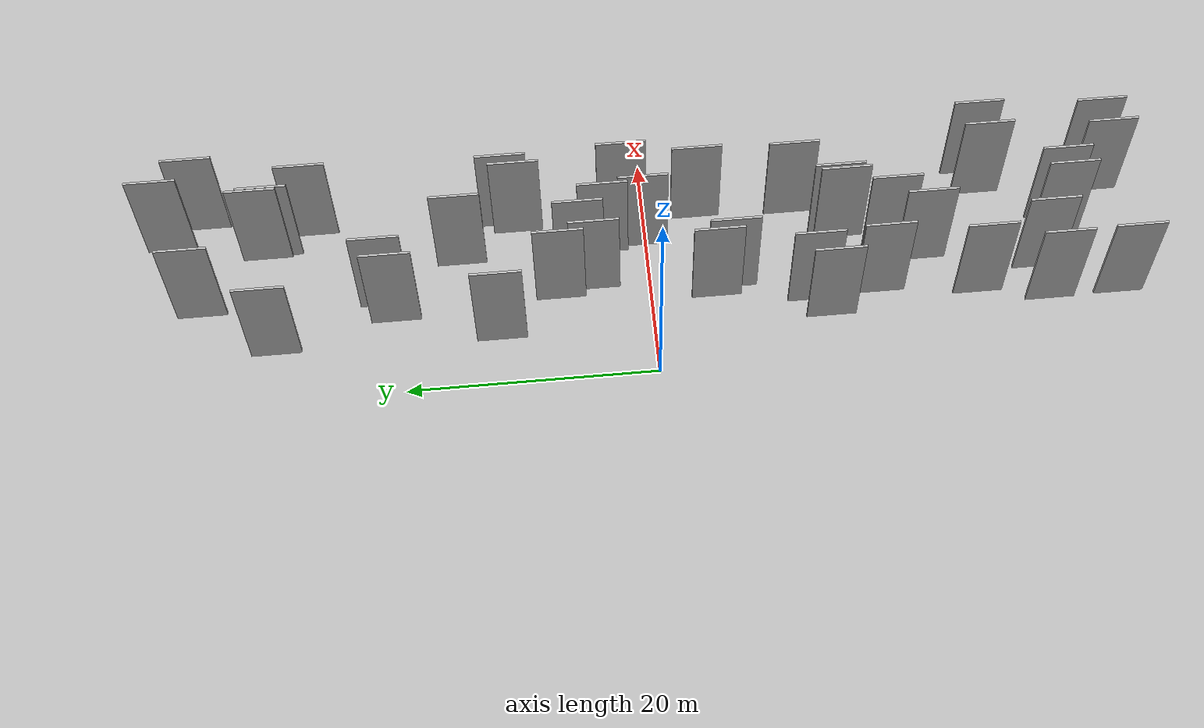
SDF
<?xml version="1.0" encoding="utf-8"?>

<sdf version="1.6">

   <world name="default">

      <gui fullscreen="0">

         <camera name="user_camera">

            <pose>-15 0 4.57585 0 0 0</pose>

            <view_controller>orbit</view_controller>

         </camera>

      </gui>

      <scene>

         <sky>

           <clouds>

             <speed>12</speed>

           </clouds>

         </sky>

         <ambient>0.4 0.4 0.4 1</ambient>

         <background>0.7 0.7 0.7 1</background>

         <shadows>1</shadows>

      </scene>

      <gravity>0 0 -9.8066</gravity>

      <magnetic_field>6e-06 2.3e-05 -4.2e-05</magnetic_field>

      <physics default="0" name="default_physics" type="ode">

         <ode>

            <solver>

               <type>quick</type>

               <iters>10</iters>

               <sor>1.0</sor>

               <use_dynamic_moi_rescaling>0</use_dynamic_moi_rescaling>

            </solver>

            <constraints>

               <cfm>0</cfm>

               <erp>0.2</erp>

               <contact_max_correcting_vel>100</contact_max_correcting_vel>

               <contact_surface_layer>0.001</contact_surface_layer>

            </constraints>

         </ode>

         <max_step_size>0.004</max_step_size>

         <real_time_factor>1</real_time_factor>

         <real_time_update_rate>250</real_time_update_rate>

      </physics>

      <light name="sun" type="directional">

         <cast_shadows>1</cast_shadows>

         <pose>0 0 10 0 0 0</pose>

         <diffuse>0.8 0.8 0.8 1</diffuse>

         <specular>0.2 0.2 0.2 1</specular>

         <attenuation>

            <range>1000</range>

            <constant>0.9</constant>

            <linear>0.01</linear>

            <quadratic>0.001</quadratic>

         </attenuation>

         <direction>-0.5 0.1 -0.9</direction>

      </light>

      <include>

         <name>ground_plane_1</name>

         <uri>model://HANNAS_ground_plane</uri>

         <pose>0 0 0  0 0 0</pose>

      </include>

      <include>

         <name>ground_plane_2</name>

         <uri>model://HANNAS_ground_plane</uri>

         <pose>100 0 0  0 0 0</pose>

      </include>

      <model name="HANNAS_wall_1">

         <static>1</static>

         <pose frame="">16.8751 36.0884 0.0 0.000000 0.000000 1.570796</pose>

         <link name="link">

            <pose frame="">0 0 5.00 0 0 0</pose>

            <collision name="collision">

               <geometry>

                  <box>

                     <size>4.00 0.2 10.00</size>

                  </box>

               </geometry>

               <max_contacts>10</max_contacts>

               <surface>

                  <contact>

                     <ode/>

                  </contact>

                  <bounce/>

                  <friction>

                     <torsional>

                        <ode/>

                     </torsional>

                     <ode/>

                  </friction>

               </surface>

            </collision>

            <visual name="visual">

               <cast_shadows>0</cast_shadows>

               <geometry>

                  <box>

                     <size>4.00 0.2 10.00</size>

                  </box>

               </geometry>

               <material>

                  <script>

                     <uri>model://HANNAS_wall/materials/scripts</uri>

                     <uri>model://HANNAS_wall/materials/textures</uri>

                     <name>vrc/HANNAS_wall</name>

                  </script>

               </material>

            </visual>

            <self_collide>0</self_collide>

            <enable_wind>0</enable_wind>

            <kinematic>0</kinematic>

         </link>

      </model>

      <model name="HANNAS_wall_2">

         <static>1</static>

         <pose frame="">11.9350 0.3305 0.0 0.000000 0.000000 1.570796</pose>

         <link name="link">

            <pose frame="">0 0 5.00 0 0 0</pose>

            <collision name="collision">

               <geometry>

                  <box>

                     <size>4.00 0.2 10.00</size>

                  </box>

               </geometry>

               <max_contacts>10</max_contacts>

               <surface>

                  <contact>

                     <ode/>

                  </contact>

                  <bounce/>

                  <friction>

                     <torsional>

                        <ode/>

                     </torsional>

                     <ode/>

                  </friction>

               </surface>

            </collision>

            <visual name="visual">

               <cast_shadows>0</cast_shadows>

               <geometry>

                  <box>

                     <size>4.00 0.2 10.00</size>

                  </box>

               </geometry>

               <material>

                  <script>

                     <uri>model://HANNAS_wall/materials/scripts</uri>

                     <uri>model://HANNAS_wall/materials/textures</uri>

                     <name>vrc/HANNAS_wall</name>

                  </script>

               </material>

            </visual>

            <self_collide>0</self_collide>

            <enable_wind>0</enable_wind>

            <kinematic>0</kinematic>

         </link>

      </model>

      <model name="HANNAS_wall_3">

         <static>1</static>

         <pose frame="">8.0137 21.4762 0.0 0.000000 0.000000 1.570796</pose>

         <link name="link">

            <pose frame="">0 0 5.00 0 0 0</pose>

            <collision name="collision">

               <geometry>

                  <box>

                     <size>4.00 0.2 10.00</size>

                  </box>

               </geometry>

               <max_contacts>10</max_contacts>

               <surface>

                  <contact>

                     <ode/>

                  </contact>

                  <bounce/>

                  <friction>

                     <torsional>

                        <ode/>

                     </torsional>

                     <ode/>

                  </friction>

               </surface>

            </collision>

            <visual name="visual">

               <cast_shadows>0</cast_shadows>

               <geometry>

                  <box>

                     <size>4.00 0.2 10.00</size>

                  </box>

               </geometry>

               <material>

                  <script>

                     <uri>model://HANNAS_wall/materials/scripts</uri>

                     <uri>model://HANNAS_wall/materials/textures</uri>

                     <name>vrc/HANNAS_wall</name>

                  </script>

               </material>

            </visual>

            <self_collide>0</self_collide>

            <enable_wind>0</enable_wind>

            <kinematic>0</kinematic>

         </link>

      </model>

      <model name="HANNAS_wall_4">

         <static>1</static>

         <pose frame="">13.9811 -37.6866 0.0 0.000000 0.000000 1.570796</pose>

         <link name="link">

            <pose frame="">0 0 5.00 0 0 0</pose>

            <collision name="collision">

               <geometry>

                  <box>

                     <size>4.00 0.2 10.00</size>

                  </box>

               </geometry>

               <max_contacts>10</max_contacts>

               <surface>

                  <contact>

                     <ode/>

                  </contact>

                  <bounce/>

                  <friction>

                     <torsional>

                        <ode/>

                     </torsional>

                     <ode/>

                  </friction>

               </surface>

            </collision>

            <visual name="visual">

               <cast_shadows>0</cast_shadows>

               <geometry>

                  <box>

                     <size>4.00 0.2 10.00</size>

                  </box>

               </geometry>

               <material>

                  <script>

                     <uri>model://HANNAS_wall/materials/scripts</uri>

                     <uri>model://HANNAS_wall/materials/textures</uri>

                     <name>vrc/HANNAS_wall</name>

                  </script>

               </material>

            </visual>

            <self_collide>0</self_collide>

            <enable_wind>0</enable_wind>

            <kinematic>0</kinematic>

         </link>

      </model>

      <model name="HANNAS_wall_5">

         <static>1</static>

         <pose frame="">3.7342 -14.1265 0.0 0.000000 0.000000 1.570796</pose>

         <link name="link">

            <pose frame="">0 0 5.00 0 0 0</pose>

            <collision name="collision">

               <geometry>

                  <box>

                     <size>4.00 0.2 10.00</size>

                  </box>

               </geometry>

               <max_contacts>10</max_contacts>

               <surface>

                  <contact>

                     <ode/>

                  </contact>

                  <bounce/>

                  <friction>

                     <torsional>

                        <ode/>

                     </torsional>

                     <ode/>

                  </friction>

               </surface>

            </collision>

            <visual name="visual">

               <cast_shadows>0</cast_shadows>

               <geometry>

                  <box>

                     <size>4.00 0.2 10.00</size>

                  </box>

               </geometry>

               <material>

                  <script>

                     <uri>model://HANNAS_wall/materials/scripts</uri>

                     <uri>model://HANNAS_wall/materials/textures</uri>

                     <name>vrc/HANNAS_wall</name>

                  </script>

               </material>

            </visual>

            <self_collide>0</self_collide>

            <enable_wind>0</enable_wind>

            <kinematic>0</kinematic>

         </link>

      </model>

      <model name="HANNAS_wall_6">

         <static>1</static>

         <pose frame="">14.1956 10.4184 0.0 0.000000 0.000000 1.570796</pose>

         <link name="link">

            <pose frame="">0 0 5.00 0 0 0</pose>

            <collision name="collision">

               <geometry>

                  <box>

                     <size>4.00 0.2 10.00</size>

                  </box>

               </geometry>

               <max_contacts>10</max_contacts>

               <surface>

                  <contact>

                     <ode/>

                  </contact>

                  <bounce/>

                  <friction>

                     <torsional>

                        <ode/>

                     </torsional>

                     <ode/>

                  </friction>

               </surface>

            </collision>

            <visual name="visual">

               <cast_shadows>0</cast_shadows>

               <geometry>

                  <box>

                     <size>4.00 0.2 10.00</size>

                  </box>

               </geometry>

               <material>

                  <script>

                     <uri>model://HANNAS_wall/materials/scripts</uri>

                     <uri>model://HANNAS_wall/materials/textures</uri>

                     <name>vrc/HANNAS_wall</name>

                  </script>

               </material>

            </visual>

            <self_collide>0</self_collide>

            <enable_wind>0</enable_wind>

            <kinematic>0</kinematic>

         </link>

      </model>

      <model name="HANNAS_wall_7">

         <static>1</static>

         <pose frame="">16.7592 -27.3400 0.0 0.000000 0.000000 1.570796</pose>

         <link name="link">

            <pose frame="">0 0 5.00 0 0 0</pose>

            <collision name="collision">

               <geometry>

                  <box>

                     <size>4.00 0.2 10.00</size>

                  </box>

               </geometry>

               <max_contacts>10</max_contacts>

               <surface>

                  <contact>

                     <ode/>

                  </contact>

                  <bounce/>

                  <friction>

                     <torsional>

                        <ode/>

                     </torsional>

                     <ode/>

                  </friction>

               </surface>

            </collision>

            <visual name="visual">

               <cast_shadows>0</cast_shadows>

               <geometry>

                  <box>

                     <size>4.00 0.2 10.00</size>

                  </box>

               </geometry>

               <material>

                  <script>

                     <uri>model://HANNAS_wall/materials/scripts</uri>

                     <uri>model://HANNAS_wall/materials/textures</uri>

                     <name>vrc/HANNAS_wall</name>

                  </script>

               </material>

            </visual>

            <self_collide>0</self_collide>

            <enable_wind>0</enable_wind>

            <kinematic>0</kinematic>

         </link>

      </model>

      <model name="HANNAS_wall_8">

         <static>1</static>

         <pose frame="">11.6335 -15.3026 0.0 0.000000 0.000000 1.570796</pose>

         <link name="link">

            <pose frame="">0 0 5.00 0 0 0</pose>

            <collision name="collision">

               <geometry>

                  <box>

                     <size>4.00 0.2 10.00</size>

                  </box>

               </geometry>

               <max_contacts>10</max_contacts>

               <surface>

                  <contact>

                     <ode/>

                  </contact>

                  <bounce/>

                  <friction>

                     <torsional>

                        <ode/>

                     </torsional>

                     <ode/>

                  </friction>

               </surface>

            </collision>

            <visual name="visual">

               <cast_shadows>0</cast_shadows>

               <geometry>

                  <box>

                     <size>4.00 0.2 10.00</size>

                  </box>

               </geometry>

               <material>

                  <script>

                     <uri>model://HANNAS_wall/materials/scripts</uri>

                     <uri>model://HANNAS_wall/materials/textures</uri>

                     <name>vrc/HANNAS_wall</name>

                  </script>

               </material>

            </visual>

            <self_collide>0</self_collide>

            <enable_wind>0</enable_wind>

            <kinematic>0</kinematic>

         </link>

      </model>

      <model name="HANNAS_wall_9">

         <static>1</static>

         <pose frame="">4.1911 30.1464 0.0 0.000000 0.000000 1.570796</pose>

         <link name="link">

            <pose frame="">0 0 5.00 0 0 0</pose>

            <collision name="collision">

               <geometry>

                  <box>

                     <size>4.00 0.2 10.00</size>

                  </box>

               </geometry>

               <max_contacts>10</max_contacts>

               <surface>

                  <contact>

                     <ode/>

                  </contact>

                  <bounce/>

                  <friction>

                     <torsional>

                        <ode/>

                     </torsional>

                     <ode/>

                  </friction>

               </surface>

            </collision>

            <visual name="visual">

               <cast_shadows>0</cast_shadows>

               <geometry>

                  <box>

                     <size>4.00 0.2 10.00</size>

                  </box>

               </geometry>

               <material>

                  <script>

                     <uri>model://HANNAS_wall/materials/scripts</uri>

                     <uri>model://HANNAS_wall/materials/textures</uri>

                     <name>vrc/HANNAS_wall</name>

                  </script>

               </material>

            </visual>

            <self_collide>0</self_collide>

            <enable_wind>0</enable_wind>

            <kinematic>0</kinematic>

         </link>

      </model>

      <model name="HANNAS_wall_10">

         <static>1</static>

         <pose frame="">11.2698 -15.7501 0.0 0.000000 0.000000 1.570796</pose>

         <link name="link">

            <pose frame="">0 0 5.00 0 0 0</pose>

            <collision name="collision">

               <geometry>

                  <box>

                     <size>4.00 0.2 10.00</size>

                  </box>

               </geometry>

               <max_contacts>10</max_contacts>

               <surface>

                  <contact>

                     <ode/>

                  </contact>

                  <bounce/>

                  <friction>

                     <torsional>

                        <ode/>

                     </torsional>

                     <ode/>

                  </friction>

               </surface>

            </collision>

            <visual name="visual">

               <cast_shadows>0</cast_shadows>

               <geometry>

                  <box>

                     <size>4.00 0.2 10.00</size>

                  </box>

               </geometry>

               <material>

                  <script>

                     <uri>model://HANNAS_wall/materials/scripts</uri>

                     <uri>model://HANNAS_wall/materials/textures</uri>

                     <name>vrc/HANNAS_wall</name>

                  </script>

               </material>

            </visual>

            <self_collide>0</self_collide>

            <enable_wind>0</enable_wind>

            <kinematic>0</kinematic>

         </link>

      </model>

      <model name="HANNAS_wall_11">

         <static>1</static>

         <pose frame="">5.3530 -12.8099 0.0 0.000000 0.000000 1.570796</pose>

         <link name="link">

            <pose frame="">0 0 5.00 0 0 0</pose>

            <collision name="collision">

               <geometry>

                  <box>

                     <size>4.00 0.2 10.00</size>

                  </box>

               </geometry>

               <max_contacts>10</max_contacts>

               <surface>

                  <contact>

                     <ode/>

                  </contact>

                  <bounce/>

                  <friction>

                     <torsional>

                        <ode/>

                     </torsional>

                     <ode/>

                  </friction>

               </surface>

            </collision>

            <visual name="visual">

               <cast_shadows>0</cast_shadows>

               <geometry>

                  <box>

                     <size>4.00 0.2 10.00</size>

                  </box>

               </geometry>

               <material>

                  <script>

                     <uri>model://HANNAS_wall/materials/scripts</uri>

                     <uri>model://HANNAS_wall/materials/textures</uri>

                     <name>vrc/HANNAS_wall</name>

                  </script>

               </material>

            </visual>

            <self_collide>0</self_collide>

            <enable_wind>0</enable_wind>

            <kinematic>0</kinematic>

         </link>

      </model>

      <model name="HANNAS_wall_12">

         <static>1</static>

         <pose frame="">3.9442 12.2792 0.0 0.000000 0.000000 1.570796</pose>

         <link name="link">

            <pose frame="">0 0 5.00 0 0 0</pose>

            <collision name="collision">

               <geometry>

                  <box>

                     <size>4.00 0.2 10.00</size>

                  </box>

               </geometry>

               <max_contacts>10</max_contacts>

               <surface>

                  <contact>

                     <ode/>

                  </contact>

                  <bounce/>

                  <friction>

                     <torsional>

                        <ode/>

                     </torsional>

                     <ode/>

                  </friction>

               </surface>

            </collision>

            <visual name="visual">

               <cast_shadows>0</cast_shadows>

               <geometry>

                  <box>

                     <size>4.00 0.2 10.00</size>

                  </box>

               </geometry>

               <material>

                  <script>

                     <uri>model://HANNAS_wall/materials/scripts</uri>

                     <uri>model://HANNAS_wall/materials/textures</uri>

                     <name>vrc/HANNAS_wall</name>

                  </script>

               </material>

            </visual>

            <self_collide>0</self_collide>

            <enable_wind>0</enable_wind>

            <kinematic>0</kinematic>

         </link>

      </model>

      <model name="HANNAS_wall_13">

         <static>1</static>

         <pose frame="">6.4200 20.6335 0.0 0.000000 0.000000 1.570796</pose>

         <link name="link">

            <pose frame="">0 0 5.00 0 0 0</pose>

            <collision name="collision">

               <geometry>

                  <box>

                     <size>4.00 0.2 10.00</size>

                  </box>

               </geometry>

               <max_contacts>10</max_contacts>

               <surface>

                  <contact>

                     <ode/>

                  </contact>

                  <bounce/>

                  <friction>

                     <torsional>

                        <ode/>

                     </torsional>

                     <ode/>

                  </friction>

               </surface>

            </collision>

            <visual name="visual">

               <cast_shadows>0</cast_shadows>

               <geometry>

                  <box>

                     <size>4.00 0.2 10.00</size>

                  </box>

               </geometry>

               <material>

                  <script>

                     <uri>model://HANNAS_wall/materials/scripts</uri>

                     <uri>model://HANNAS_wall/materials/textures</uri>

                     <name>vrc/HANNAS_wall</name>

                  </script>

               </material>

            </visual>

            <self_collide>0</self_collide>

            <enable_wind>0</enable_wind>

            <kinematic>0</kinematic>

         </link>

      </model>

      <model name="HANNAS_wall_14">

         <static>1</static>

         <pose frame="">7.1862 -6.4948 0.0 0.000000 0.000000 1.570796</pose>

         <link name="link">

            <pose frame="">0 0 5.00 0 0 0</pose>

            <collision name="collision">

               <geometry>

                  <box>

                     <size>4.00 0.2 10.00</size>

                  </box>

               </geometry>

               <max_contacts>10</max_contacts>

               <surface>

                  <contact>

                     <ode/>

                  </contact>

                  <bounce/>

                  <friction>

                     <torsional>

                        <ode/>

                     </torsional>

                     <ode/>

                  </friction>

               </surface>

            </collision>

            <visual name="visual">

               <cast_shadows>0</cast_shadows>

               <geometry>

                  <box>

                     <size>4.00 0.2 10.00</size>

                  </box>

               </geometry>

               <material>

                  <script>

                     <uri>model://HANNAS_wall/materials/scripts</uri>

                     <uri>model://HANNAS_wall/materials/textures</uri>

                     <name>vrc/HANNAS_wall</name>

                  </script>

               </material>

            </visual>

            <self_collide>0</self_collide>

            <enable_wind>0</enable_wind>

            <kinematic>0</kinematic>

         </link>

      </model>

      <model name="HANNAS_wall_15">

         <static>1</static>

         <pose frame="">3.7817 -37.5315 0.0 0.000000 0.000000 1.570796</pose>

         <link name="link">

            <pose frame="">0 0 5.00 0 0 0</pose>

            <collision name="collision">

               <geometry>

                  <box>

                     <size>4.00 0.2 10.00</size>

                  </box>

               </geometry>

               <max_contacts>10</max_contacts>

               <surface>

                  <contact>

                     <ode/>

                  </contact>

                  <bounce/>

                  <friction>

                     <torsional>

                        <ode/>

                     </torsional>

                     <ode/>

                  </friction>

               </surface>

            </collision>

            <visual name="visual">

               <cast_shadows>0</cast_shadows>

               <geometry>

                  <box>

                     <size>4.00 0.2 10.00</size>

                  </box>

               </geometry>

               <material>

                  <script>

                     <uri>model://HANNAS_wall/materials/scripts</uri>

                     <uri>model://HANNAS_wall/materials/textures</uri>

                     <name>vrc/HANNAS_wall</name>

                  </script>

               </material>

            </visual>

            <self_collide>0</self_collide>

            <enable_wind>0</enable_wind>

            <kinematic>0</kinematic>

         </link>

      </model>

      <model name="HANNAS_wall_16">

         <static>1</static>

         <pose frame="">5.6121 -18.3275 0.0 0.000000 0.000000 1.570796</pose>

         <link name="link">

            <pose frame="">0 0 5.00 0 0 0</pose>

            <collision name="collision">

               <geometry>

                  <box>

                     <size>4.00 0.2 10.00</size>

                  </box>

               </geometry>

               <max_contacts>10</max_contacts>

               <surface>

                  <contact>

                     <ode/>

                  </contact>

                  <bounce/>

                  <friction>

                     <torsional>

                        <ode/>

                     </torsional>

                     <ode/>

                  </friction>

               </surface>

            </collision>

            <visual name="visual">

               <cast_shadows>0</cast_shadows>

               <geometry>

                  <box>

                     <size>4.00 0.2 10.00</size>

                  </box>

               </geometry>

               <material>

                  <script>

                     <uri>model://HANNAS_wall/materials/scripts</uri>

                     <uri>model://HANNAS_wall/materials/textures</uri>

                     <name>vrc/HANNAS_wall</name>

                  </script>

               </material>

            </visual>

            <self_collide>0</self_collide>

            <enable_wind>0</enable_wind>

            <kinematic>0</kinematic>

         </link>

      </model>

      <model name="HANNAS_wall_17">

         <static>1</static>

         <pose frame="">3.6987 -31.8953 0.0 0.000000 0.000000 1.570796</pose>

         <link name="link">

            <pose frame="">0 0 5.00 0 0 0</pose>

            <collision name="collision">

               <geometry>

                  <box>

                     <size>4.00 0.2 10.00</size>

                  </box>

               </geometry>

               <max_contacts>10</max_contacts>

               <surface>

                  <contact>

                     <ode/>

                  </contact>

                  <bounce/>

                  <friction>

                     <torsional>

                        <ode/>

                     </torsional>

                     <ode/>

                  </friction>

               </surface>

            </collision>

            <visual name="visual">

               <cast_shadows>0</cast_shadows>

               <geometry>

                  <box>

                     <size>4.00 0.2 10.00</size>

                  </box>

               </geometry>

               <material>

                  <script>

                     <uri>model://HANNAS_wall/materials/scripts</uri>

                     <uri>model://HANNAS_wall/materials/textures</uri>

                     <name>vrc/HANNAS_wall</name>

                  </script>

               </material>

            </visual>

            <self_collide>0</self_collide>

            <enable_wind>0</enable_wind>

            <kinematic>0</kinematic>

         </link>

      </model>

      <model name="HANNAS_wall_18">

         <static>1</static>

         <pose frame="">7.3652 7.3415 0.0 0.000000 0.000000 1.570796</pose>

         <link name="link">

            <pose frame="">0 0 5.00 0 0 0</pose>

            <collision name="collision">

               <geometry>

                  <box>

                     <size>4.00 0.2 10.00</size>

                  </box>

               </geometry>

               <max_contacts>10</max_contacts>

               <surface>

                  <contact>

                     <ode/>

                  </contact>

                  <bounce/>

                  <friction>

                     <torsional>

                        <ode/>

                     </torsional>

                     <ode/>

                  </friction>

               </surface>

            </collision>

            <visual name="visual">

               <cast_shadows>0</cast_shadows>

               <geometry>

                  <box>

                     <size>4.00 0.2 10.00</size>

                  </box>

               </geometry>

               <material>

                  <script>

                     <uri>model://HANNAS_wall/materials/scripts</uri>

                     <uri>model://HANNAS_wall/materials/textures</uri>

                     <name>vrc/HANNAS_wall</name>

                  </script>

               </material>

            </visual>

            <self_collide>0</self_collide>

            <enable_wind>0</enable_wind>

            <kinematic>0</kinematic>

         </link>

      </model>

      <model name="HANNAS_wall_19">

         <static>1</static>

         <pose frame="">8.2868 36.1251 0.0 0.000000 0.000000 1.570796</pose>

         <link name="link">

            <pose frame="">0 0 5.00 0 0 0</pose>

            <collision name="collision">

               <geometry>

                  <box>

                     <size>4.00 0.2 10.00</size>

                  </box>

               </geometry>

               <max_contacts>10</max_contacts>

               <surface>

                  <contact>

                     <ode/>

                  </contact>

                  <bounce/>

                  <friction>

                     <torsional>

                        <ode/>

                     </torsional>

                     <ode/>

                  </friction>

               </surface>

            </collision>

            <visual name="visual">

               <cast_shadows>0</cast_shadows>

               <geometry>

                  <box>

                     <size>4.00 0.2 10.00</size>

                  </box>

               </geometry>

               <material>

                  <script>

                     <uri>model://HANNAS_wall/materials/scripts</uri>

                     <uri>model://HANNAS_wall/materials/textures</uri>

                     <name>vrc/HANNAS_wall</name>

                  </script>

               </material>

            </visual>

            <self_collide>0</self_collide>

            <enable_wind>0</enable_wind>

            <kinematic>0</kinematic>

         </link>

      </model>

      <model name="HANNAS_wall_20">

         <static>1</static>

         <pose frame="">13.3935 30.9675 0.0 0.000000 0.000000 1.570796</pose>

         <link name="link">

            <pose frame="">0 0 5.00 0 0 0</pose>

            <collision name="collision">

               <geometry>

                  <box>

                     <size>4.00 0.2 10.00</size>

                  </box>

               </geometry>

               <max_contacts>10</max_contacts>

               <surface>

                  <contact>

                     <ode/>

                  </contact>

                  <bounce/>

                  <friction>

                     <torsional>

                        <ode/>

                     </torsional>

                     <ode/>

                  </friction>

               </surface>

            </collision>

            <visual name="visual">

               <cast_shadows>0</cast_shadows>

               <geometry>

                  <box>

                     <size>4.00 0.2 10.00</size>

                  </box>

               </geometry>

               <material>

                  <script>

                     <uri>model://HANNAS_wall/materials/scripts</uri>

                     <uri>model://HANNAS_wall/materials/textures</uri>

                     <name>vrc/HANNAS_wall</name>

                  </script>

               </material>

            </visual>

            <self_collide>0</self_collide>

            <enable_wind>0</enable_wind>

            <kinematic>0</kinematic>

         </link>

      </model>

      <model name="HANNAS_wall_21">

         <static>1</static>

         <pose frame="">11.3845 15.1704 0.0 0.000000 0.000000 1.570796</pose>

         <link name="link">

            <pose frame="">0 0 5.00 0 0 0</pose>

            <collision name="collision">

               <geometry>

                  <box>

                     <size>4.00 0.2 10.00</size>

                  </box>

               </geometry>

               <max_contacts>10</max_contacts>

               <surface>

                  <contact>

                     <ode/>

                  </contact>

                  <bounce/>

                  <friction>

                     <torsional>

                        <ode/>

                     </torsional>

                     <ode/>

                  </friction>

               </surface>

            </collision>

            <visual name="visual">

               <cast_shadows>0</cast_shadows>

               <geometry>

                  <box>

                     <size>4.00 0.2 10.00</size>

                  </box>

               </geometry>

               <material>

                  <script>

                     <uri>model://HANNAS_wall/materials/scripts</uri>

                     <uri>model://HANNAS_wall/materials/textures</uri>

                     <name>vrc/HANNAS_wall</name>

                  </script>

               </material>

            </visual>

            <self_collide>0</self_collide>

            <enable_wind>0</enable_wind>

            <kinematic>0</kinematic>

         </link>

      </model>

      <model name="HANNAS_wall_22">

         <static>1</static>

         <pose frame="">8.4756 -22.1381 0.0 0.000000 0.000000 1.570796</pose>

         <link name="link">

            <pose frame="">0 0 5.00 0 0 0</pose>

            <collision name="collision">

               <geometry>

                  <box>

                     <size>4.00 0.2 10.00</size>

                  </box>

               </geometry>

               <max_contacts>10</max_contacts>

               <surface>

                  <contact>

                     <ode/>

                  </contact>

                  <bounce/>

                  <friction>

                     <torsional>

                        <ode/>

                     </torsional>

                     <ode/>

                  </friction>

               </surface>

            </collision>

            <visual name="visual">

               <cast_shadows>0</cast_shadows>

               <geometry>

                  <box>

                     <size>4.00 0.2 10.00</size>

                  </box>

               </geometry>

               <material>

                  <script>

                     <uri>model://HANNAS_wall/materials/scripts</uri>

                     <uri>model://HANNAS_wall/materials/textures</uri>

                     <name>vrc/HANNAS_wall</name>

                  </script>

               </material>

            </visual>

            <self_collide>0</self_collide>

            <enable_wind>0</enable_wind>

            <kinematic>0</kinematic>

         </link>

      </model>

      <model name="HANNAS_wall_23">

         <static>1</static>

         <pose frame="">4.8376 -26.2017 0.0 0.000000 0.000000 1.570796</pose>

         <link name="link">

            <pose frame="">0 0 5.00 0 0 0</pose>

            <collision name="collision">

               <geometry>

                  <box>

                     <size>4.00 0.2 10.00</size>

                  </box>

               </geometry>

               <max_contacts>10</max_contacts>

               <surface>

                  <contact>

                     <ode/>

                  </contact>

                  <bounce/>

                  <friction>

                     <torsional>

                        <ode/>

                     </torsional>

                     <ode/>

                  </friction>

               </surface>

            </collision>

            <visual name="visual">

               <cast_shadows>0</cast_shadows>

               <geometry>

                  <box>

                     <size>4.00 0.2 10.00</size>

                  </box>

               </geometry>

               <material>

                  <script>

                     <uri>model://HANNAS_wall/materials/scripts</uri>

                     <uri>model://HANNAS_wall/materials/textures</uri>

                     <name>vrc/HANNAS_wall</name>

                  </script>

               </material>

            </visual>

            <self_collide>0</self_collide>

            <enable_wind>0</enable_wind>

            <kinematic>0</kinematic>

         </link>

      </model>

      <model name="HANNAS_wall_24">

         <static>1</static>

         <pose frame="">16.1404 -37.2414 0.0 0.000000 0.000000 1.570796</pose>

         <link name="link">

            <pose frame="">0 0 5.00 0 0 0</pose>

            <collision name="collision">

               <geometry>

                  <box>

                     <size>4.00 0.2 10.00</size>

                  </box>

               </geometry>

               <max_contacts>10</max_contacts>

               <surface>

                  <contact>

                     <ode/>

                  </contact>

                  <bounce/>

                  <friction>

                     <torsional>

                        <ode/>

                     </torsional>

                     <ode/>

                  </friction>

               </surface>

            </collision>

            <visual name="visual">

               <cast_shadows>0</cast_shadows>

               <geometry>

                  <box>

                     <size>4.00 0.2 10.00</size>

                  </box>

               </geometry>

               <material>

                  <script>

                     <uri>model://HANNAS_wall/materials/scripts</uri>

                     <uri>model://HANNAS_wall/materials/textures</uri>

                     <name>vrc/HANNAS_wall</name>

                  </script>

               </material>

            </visual>

            <self_collide>0</self_collide>

            <enable_wind>0</enable_wind>

            <kinematic>0</kinematic>

         </link>

      </model>

      <model name="HANNAS_wall_25">

         <static>1</static>

         <pose frame="">15.3138 1.7862 0.0 0.000000 0.000000 1.570796</pose>

         <link name="link">

            <pose frame="">0 0 5.00 0 0 0</pose>

            <collision name="collision">

               <geometry>

                  <box>

                     <size>4.00 0.2 10.00</size>

                  </box>

               </geometry>

               <max_contacts>10</max_contacts>

               <surface>

                  <contact>

                     <ode/>

                  </contact>

                  <bounce/>

                  <friction>

                     <torsional>

                        <ode/>

                     </torsional>

                     <ode/>

                  </friction>

               </surface>

            </collision>

            <visual name="visual">

               <cast_shadows>0</cast_shadows>

               <geometry>

                  <box>

                     <size>4.00 0.2 10.00</size>

                  </box>

               </geometry>

               <material>

                  <script>

                     <uri>model://HANNAS_wall/materials/scripts</uri>

                     <uri>model://HANNAS_wall/materials/textures</uri>

                     <name>vrc/HANNAS_wall</name>

                  </script>

               </material>

            </visual>

            <self_collide>0</self_collide>

            <enable_wind>0</enable_wind>

            <kinematic>0</kinematic>

         </link>

      </model>

      <model name="HANNAS_wall_26">

         <static>1</static>

         <pose frame="">14.3155 -4.1936 0.0 0.000000 0.000000 1.570796</pose>

         <link name="link">

            <pose frame="">0 0 5.00 0 0 0</pose>

            <collision name="collision">

               <geometry>

                  <box>

                     <size>4.00 0.2 10.00</size>

                  </box>

               </geometry>

               <max_contacts>10</max_contacts>

               <surface>

                  <contact>

                     <ode/>

                  </contact>

                  <bounce/>

                  <friction>

                     <torsional>

                        <ode/>

                     </torsional>

                     <ode/>

                  </friction>

               </surface>

            </collision>

            <visual name="visual">

               <cast_shadows>0</cast_shadows>

               <geometry>

                  <box>

                     <size>4.00 0.2 10.00</size>

                  </box>

               </geometry>

               <material>

                  <script>

                     <uri>model://HANNAS_wall/materials/scripts</uri>

                     <uri>model://HANNAS_wall/materials/textures</uri>

                     <name>vrc/HANNAS_wall</name>

                  </script>

               </material>

            </visual>

            <self_collide>0</self_collide>

            <enable_wind>0</enable_wind>

            <kinematic>0</kinematic>

         </link>

      </model>

      <model name="HANNAS_wall_27">

         <static>1</static>

         <pose frame="">8.0430 4.5285 0.0 0.000000 0.000000 1.570796</pose>

         <link name="link">

            <pose frame="">0 0 5.00 0 0 0</pose>

            <collision name="collision">

               <geometry>

                  <box>

                     <size>4.00 0.2 10.00</size>

                  </box>

               </geometry>

               <max_contacts>10</max_contacts>

               <surface>

                  <contact>

                     <ode/>

                  </contact>

                  <bounce/>

                  <friction>

                     <torsional>

                        <ode/>

                     </torsional>

                     <ode/>

                  </friction>

               </surface>

            </collision>

            <visual name="visual">

               <cast_shadows>0</cast_shadows>

               <geometry>

                  <box>

                     <size>4.00 0.2 10.00</size>

                  </box>

               </geometry>

               <material>

                  <script>

                     <uri>model://HANNAS_wall/materials/scripts</uri>

                     <uri>model://HANNAS_wall/materials/textures</uri>

                     <name>vrc/HANNAS_wall</name>

                  </script>

               </material>

            </visual>

            <self_collide>0</self_collide>

            <enable_wind>0</enable_wind>

            <kinematic>0</kinematic>

         </link>

      </model>

      <model name="HANNAS_wall_28">

         <static>1</static>

         <pose frame="">15.4421 27.2131 0.0 0.000000 0.000000 1.570796</pose>

         <link name="link">

            <pose frame="">0 0 5.00 0 0 0</pose>

            <collision name="collision">

               <geometry>

                  <box>

                     <size>4.00 0.2 10.00</size>

                  </box>

               </geometry>

               <max_contacts>10</max_contacts>

               <surface>

                  <contact>

                     <ode/>

                  </contact>

                  <bounce/>

                  <friction>

                     <torsional>

                        <ode/>

                     </torsional>

                     <ode/>

                  </friction>

               </surface>

            </collision>

            <visual name="visual">

               <cast_shadows>0</cast_shadows>

               <geometry>

                  <box>

                     <size>4.00 0.2 10.00</size>

                  </box>

               </geometry>

               <material>

                  <script>

                     <uri>model://HANNAS_wall/materials/scripts</uri>

                     <uri>model://HANNAS_wall/materials/textures</uri>

                     <name>vrc/HANNAS_wall</name>

                  </script>

               </material>

            </visual>

            <self_collide>0</self_collide>

            <enable_wind>0</enable_wind>

            <kinematic>0</kinematic>

         </link>

      </model>

      <model name="HANNAS_wall_29">

         <static>1</static>

         <pose frame="">6.4164 -5.1505 0.0 0.000000 0.000000 1.570796</pose>

         <link name="link">

            <pose frame="">0 0 5.00 0 0 0</pose>

            <collision name="collision">

               <geometry>

                  <box>

                     <size>4.00 0.2 10.00</size>

                  </box>

               </geometry>

               <max_contacts>10</max_contacts>

               <surface>

                  <contact>

                     <ode/>

                  </contact>

                  <bounce/>

                  <friction>

                     <torsional>

                        <ode/>

                     </torsional>

                     <ode/>

                  </friction>

               </surface>

            </collision>

            <visual name="visual">

               <cast_shadows>0</cast_shadows>

               <geometry>

                  <box>

                     <size>4.00 0.2 10.00</size>

                  </box>

               </geometry>

               <material>

                  <script>

                     <uri>model://HANNAS_wall/materials/scripts</uri>

                     <uri>model://HANNAS_wall/materials/textures</uri>

                     <name>vrc/HANNAS_wall</name>

                  </script>

               </material>

            </visual>

            <self_collide>0</self_collide>

            <enable_wind>0</enable_wind>

            <kinematic>0</kinematic>

         </link>

      </model>

      <model name="HANNAS_wall_30">

         <static>1</static>

         <pose frame="">14.5997 -27.7837 0.0 0.000000 0.000000 1.570796</pose>

         <link name="link">

            <pose frame="">0 0 5.00 0 0 0</pose>

            <collision name="collision">

               <geometry>

                  <box>

                     <size>4.00 0.2 10.00</size>

                  </box>

               </geometry>

               <max_contacts>10</max_contacts>

               <surface>

                  <contact>

                     <ode/>

                  </contact>

                  <bounce/>

                  <friction>

                     <torsional>

                        <ode/>

                     </torsional>

                     <ode/>

                  </friction>

               </surface>

            </collision>

            <visual name="visual">

               <cast_shadows>0</cast_shadows>

               <geometry>

                  <box>

                     <size>4.00 0.2 10.00</size>

                  </box>

               </geometry>

               <material>

                  <script>

                     <uri>model://HANNAS_wall/materials/scripts</uri>

                     <uri>model://HANNAS_wall/materials/textures</uri>

                     <name>vrc/HANNAS_wall</name>

                  </script>

               </material>

            </visual>

            <self_collide>0</self_collide>

            <enable_wind>0</enable_wind>

            <kinematic>0</kinematic>

         </link>

      </model>

      <model name="HANNAS_wall_31">

         <static>1</static>

         <pose frame="">13.6114 30.1207 0.0 0.000000 0.000000 1.570796</pose>

         <link name="link">

            <pose frame="">0 0 5.00 0 0 0</pose>

            <collision name="collision">

               <geometry>

                  <box>

                     <size>4.00 0.2 10.00</size>

                  </box>

               </geometry>

               <max_contacts>10</max_contacts>

               <surface>

                  <contact>

                     <ode/>

                  </contact>

                  <bounce/>

                  <friction>

                     <torsional>

                        <ode/>

                     </torsional>

                     <ode/>

                  </friction>

               </surface>

            </collision>

            <visual name="visual">

               <cast_shadows>0</cast_shadows>

               <geometry>

                  <box>

                     <size>4.00 0.2 10.00</size>

                  </box>

               </geometry>

               <material>

                  <script>

                     <uri>model://HANNAS_wall/materials/scripts</uri>

                     <uri>model://HANNAS_wall/materials/textures</uri>

                     <name>vrc/HANNAS_wall</name>

                  </script>

               </material>

            </visual>

            <self_collide>0</self_collide>

            <enable_wind>0</enable_wind>

            <kinematic>0</kinematic>

         </link>

      </model>

      <model name="HANNAS_wall_32">

         <static>1</static>

         <pose frame="">10.0297 5.6213 0.0 0.000000 0.000000 1.570796</pose>

         <link name="link">

            <pose frame="">0 0 5.00 0 0 0</pose>

            <collision name="collision">

               <geometry>

                  <box>

                     <size>4.00 0.2 10.00</size>

                  </box>

               </geometry>

               <max_contacts>10</max_contacts>

               <surface>

                  <contact>

                     <ode/>

                  </contact>

                  <bounce/>

                  <friction>

                     <torsional>

                        <ode/>

                     </torsional>

                     <ode/>

                  </friction>

               </surface>

            </collision>

            <visual name="visual">

               <cast_shadows>0</cast_shadows>

               <geometry>

                  <box>

                     <size>4.00 0.2 10.00</size>

                  </box>

               </geometry>

               <material>

                  <script>

                     <uri>model://HANNAS_wall/materials/scripts</uri>

                     <uri>model://HANNAS_wall/materials/textures</uri>

                     <name>vrc/HANNAS_wall</name>

                  </script>

               </material>

            </visual>

            <self_collide>0</self_collide>

            <enable_wind>0</enable_wind>

            <kinematic>0</kinematic>

         </link>

      </model>

      <model name="HANNAS_wall_33">

         <static>1</static>

         <pose frame="">14.9207 38.7714 0.0 0.000000 0.000000 1.570796</pose>

         <link name="link">

            <pose frame="">0 0 5.00 0 0 0</pose>

            <collision name="collision">

               <geometry>

                  <box>

                     <size>4.00 0.2 10.00</size>

                  </box>

               </geometry>

               <max_contacts>10</max_contacts>

               <surface>

                  <contact>

                     <ode/>

                  </contact>

                  <bounce/>

                  <friction>

                     <torsional>

                        <ode/>

                     </torsional>

                     <ode/>

                  </friction>

               </surface>

            </collision>

            <visual name="visual">

               <cast_shadows>0</cast_shadows>

               <geometry>

                  <box>

                     <size>4.00 0.2 10.00</size>

                  </box>

               </geometry>

               <material>

                  <script>

                     <uri>model://HANNAS_wall/materials/scripts</uri>

                     <uri>model://HANNAS_wall/materials/textures</uri>

                     <name>vrc/HANNAS_wall</name>

                  </script>

               </material>

            </visual>

            <self_collide>0</self_collide>

            <enable_wind>0</enable_wind>

            <kinematic>0</kinematic>

         </link>

      </model>

      <model name="HANNAS_wall_34">

         <static>1</static>

         <pose frame="">14.0630 -11.9454 0.0 0.000000 0.000000 1.570796</pose>

         <link name="link">

            <pose frame="">0 0 5.00 0 0 0</pose>

            <collision name="collision">

               <geometry>

                  <box>

                     <size>4.00 0.2 10.00</size>

                  </box>

               </geometry>

               <max_contacts>10</max_contacts>

               <surface>

                  <contact>

                     <ode/>

                  </contact>

                  <bounce/>

                  <friction>

                     <torsional>

                        <ode/>

                     </torsional>

                     <ode/>

                  </friction>

               </surface>

            </collision>

            <visual name="visual">

               <cast_shadows>0</cast_shadows>

               <geometry>

                  <box>

                     <size>4.00 0.2 10.00</size>

                  </box>

               </geometry>

               <material>

                  <script>

                     <uri>model://HANNAS_wall/materials/scripts</uri>

                     <uri>model://HANNAS_wall/materials/textures</uri>

                     <name>vrc/HANNAS_wall</name>

                  </script>

               </material>

            </visual>

            <self_collide>0</self_collide>

            <enable_wind>0</enable_wind>

            <kinematic>0</kinematic>

         </link>

      </model>

      <model name="HANNAS_wall_35">

         <static>1</static>

         <pose frame="">10.0267 -19.5830 0.0 0.000000 0.000000 1.570796</pose>

         <link name="link">

            <pose frame="">0 0 5.00 0 0 0</pose>

            <collision name="collision">

               <geometry>

                  <box>

                     <size>4.00 0.2 10.00</size>

                  </box>

               </geometry>

               <max_contacts>10</max_contacts>

               <surface>

                  <contact>

                     <ode/>

                  </contact>

                  <bounce/>

                  <friction>

                     <torsional>

                        <ode/>

                     </torsional>

                     <ode/>

                  </friction>

               </surface>

            </collision>

            <visual name="visual">

               <cast_shadows>0</cast_shadows>

               <geometry>

                  <box>

                     <size>4.00 0.2 10.00</size>

                  </box>

               </geometry>

               <material>

                  <script>

                     <uri>model://HANNAS_wall/materials/scripts</uri>

                     <uri>model://HANNAS_wall/materials/textures</uri>

                     <name>vrc/HANNAS_wall</name>

                  </script>

               </material>

            </visual>

            <self_collide>0</self_collide>

            <enable_wind>0</enable_wind>

            <kinematic>0</kinematic>

         </link>

      </model>

      <model name="HANNAS_wall_36">

         <static>1</static>

         <pose frame="">10.1382 -33.7104 0.0 0.000000 0.000000 1.570796</pose>

         <link name="link">

            <pose frame="">0 0 5.00 0 0 0</pose>

            <collision name="collision">

               <geometry>

                  <box>

                     <size>4.00 0.2 10.00</size>

                  </box>

               </geometry>

               <max_contacts>10</max_contacts>

               <surface>

                  <contact>

                     <ode/>

                  </contact>

                  <bounce/>

                  <friction>

                     <torsional>

                        <ode/>

                     </torsional>

                     <ode/>

                  </friction>

               </surface>

            </collision>

            <visual name="visual">

               <cast_shadows>0</cast_shadows>

               <geometry>

                  <box>

                     <size>4.00 0.2 10.00</size>

                  </box>

               </geometry>

               <material>

                  <script>

                     <uri>model://HANNAS_wall/materials/scripts</uri>

                     <uri>model://HANNAS_wall/materials/textures</uri>

                     <name>vrc/HANNAS_wall</name>

                  </script>

               </material>

            </visual>

            <self_collide>0</self_collide>

            <enable_wind>0</enable_wind>

            <kinematic>0</kinematic>

         </link>

      </model>

      <model name="HANNAS_wall_37">

         <static>1</static>

         <pose frame="">11.6366 -33.4821 0.0 0.000000 0.000000 1.570796</pose>

         <link name="link">

            <pose frame="">0 0 5.00 0 0 0</pose>

            <collision name="collision">

               <geometry>

                  <box>

                     <size>4.00 0.2 10.00</size>

                  </box>

               </geometry>

               <max_contacts>10</max_contacts>

               <surface>

                  <contact>

                     <ode/>

                  </contact>

                  <bounce/>

                  <friction>

                     <torsional>

                        <ode/>

                     </torsional>

                     <ode/>

                  </friction>

               </surface>

            </collision>

            <visual name="visual">

               <cast_shadows>0</cast_shadows>

               <geometry>

                  <box>

                     <size>4.00 0.2 10.00</size>

                  </box>

               </geometry>

               <material>

                  <script>

                     <uri>model://HANNAS_wall/materials/scripts</uri>

                     <uri>model://HANNAS_wall/materials/textures</uri>

                     <name>vrc/HANNAS_wall</name>

                  </script>

               </material>

            </visual>

            <self_collide>0</self_collide>

            <enable_wind>0</enable_wind>

            <kinematic>0</kinematic>

         </link>

      </model>

      <model name="HANNAS_wall_38">

         <static>1</static>

         <pose frame="">11.5333 3.5737 0.0 0.000000 0.000000 1.570796</pose>

         <link name="link">

            <pose frame="">0 0 5.00 0 0 0</pose>

            <collision name="collision">

               <geometry>

                  <box>

                     <size>4.00 0.2 10.00</size>

                  </box>

               </geometry>

               <max_contacts>10</max_contacts>

               <surface>

                  <contact>

                     <ode/>

                  </contact>

                  <bounce/>

                  <friction>

                     <torsional>

                        <ode/>

                     </torsional>

                     <ode/>

                  </friction>

               </surface>

            </collision>

            <visual name="visual">

               <cast_shadows>0</cast_shadows>

               <geometry>

                  <box>

                     <size>4.00 0.2 10.00</size>

                  </box>

               </geometry>

               <material>

                  <script>

                     <uri>model://HANNAS_wall/materials/scripts</uri>

                     <uri>model://HANNAS_wall/materials/textures</uri>

                     <name>vrc/HANNAS_wall</name>

                  </script>

               </material>

            </visual>

            <self_collide>0</self_collide>

            <enable_wind>0</enable_wind>

            <kinematic>0</kinematic>

         </link>

      </model>

      <model name="HANNAS_wall_39">

         <static>1</static>

         <pose frame="">14.9829 11.4152 0.0 0.000000 0.000000 1.570796</pose>

         <link name="link">

            <pose frame="">0 0 5.00 0 0 0</pose>

            <collision name="collision">

               <geometry>

                  <box>

                     <size>4.00 0.2 10.00</size>

                  </box>

               </geometry>

               <max_contacts>10</max_contacts>

               <surface>

                  <contact>

                     <ode/>

                  </contact>

                  <bounce/>

                  <friction>

                     <torsional>

                        <ode/>

                     </torsional>

                     <ode/>

                  </friction>

               </surface>

            </collision>

            <visual name="visual">

               <cast_shadows>0</cast_shadows>

               <geometry>

                  <box>

                     <size>4.00 0.2 10.00</size>

                  </box>

               </geometry>

               <material>

                  <script>

                     <uri>model://HANNAS_wall/materials/scripts</uri>

                     <uri>model://HANNAS_wall/materials/textures</uri>

                     <name>vrc/HANNAS_wall</name>

                  </script>

               </material>

            </visual>

            <self_collide>0</self_collide>

            <enable_wind>0</enable_wind>

            <kinematic>0</kinematic>

         </link>

      </model>

      <model name="HANNAS_wall_40">

         <static>1</static>

         <pose frame="">6.8029 -31.4599 0.0 0.000000 0.000000 1.570796</pose>

         <link name="link">

            <pose frame="">0 0 5.00 0 0 0</pose>

            <collision name="collision">

               <geometry>

                  <box>

                     <size>4.00 0.2 10.00</size>

                  </box>

               </geometry>

               <max_contacts>10</max_contacts>

               <surface>

                  <contact>

                     <ode/>

                  </contact>

                  <bounce/>

                  <friction>

                     <torsional>

                        <ode/>

                     </torsional>

                     <ode/>

                  </friction>

               </surface>

            </collision>

            <visual name="visual">

               <cast_shadows>0</cast_shadows>

               <geometry>

                  <box>

                     <size>4.00 0.2 10.00</size>

                  </box>

               </geometry>

               <material>

                  <script>

                     <uri>model://HANNAS_wall/materials/scripts</uri>

                     <uri>model://HANNAS_wall/materials/textures</uri>

                     <name>vrc/HANNAS_wall</name>

                  </script>

               </material>

            </visual>

            <self_collide>0</self_collide>

            <enable_wind>0</enable_wind>

            <kinematic>0</kinematic>

         </link>

      </model>

   </world>

</sdf>
